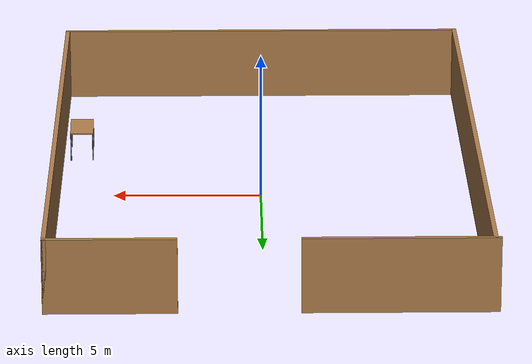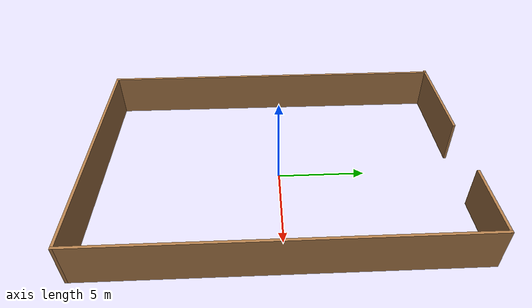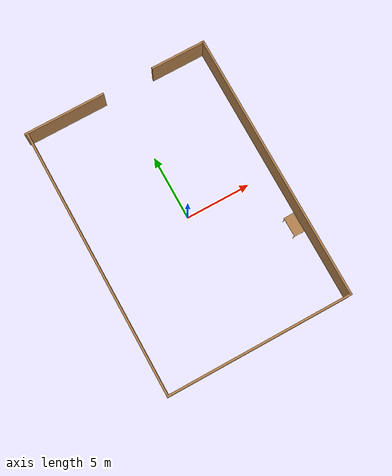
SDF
<sdf version="1.6">
 <world name="default">
  <gravity>0 0 -9.8</gravity>
  <physics name="default_physics" default="0" type="ode">
   <max_step_size>0.001</max_step_size>
   <real_time_factor>1</real_time_factor>
   <real_time_update_rate>1000</real_time_update_rate>
  </physics>
  <light name="Warehouse_CeilingLight_003" type="point">
   <pose>0 0 9 0 -0 0</pose>
   <diffuse>0.5 0.5 0.5 1</diffuse>
   <specular>0.2 0.2 0.2 1</specular>
   <attenuation>
    <range>80</range>
    <constant>0.3</constant>
    <linear>0.01</linear>
    <quadratic>0.001</quadratic>
   </attenuation>
   <direction>0.1 0.1 -1</direction>
  </light>
  <magnetic_field>6e-06 2.3e-05 -4.2e-05</magnetic_field>
  <atmosphere type="adiabatic"/>
  <scene><ambient>0.4 0.4 0.4 1</ambient><background>0.7 0.7 0.7 1</background><shadows>1</shadows></scene>
  <audio><device>default</device></audio>
  <spherical_coordinates>
   <surface_model>EARTH_WGS84</surface_model>
   <latitude_deg>0</latitude_deg>
   <longitude_deg>0</longitude_deg>
   <elevation>0</elevation>
   <heading_deg>0</heading_deg>
  </spherical_coordinates>
  <model name="table">
   <static>1</static>
   <link name="link">
    <collision name="surface">
     <pose>0 0 1 0 -0 0</pose>
     <geometry><box><size>1.5 0.8 0.03</size></box></geometry>
     <surface><friction><ode><mu>0.6</mu><mu2>0.6</mu2></ode></friction></surface>
    </collision>
    <visual name="visual1">
     <pose>0 0 1 0 -0 0</pose>
     <geometry><box><size>1.5 0.8 0.03</size></box></geometry>
     <material>
      <script><uri>file://media/materials/scripts/gazebo.material</uri><name>Gazebo/Wood</name></script>
     </material>
    </visual>
    <collision name="front_left_leg">
     <pose>0.68 0.38 0.5 0 -0 0</pose>
     <geometry><cylinder><radius>0.02</radius><length>1</length></cylinder></geometry>
    </collision>
    <visual name="front_left_leg">
     <pose>0.68 0.38 0.5 0 -0 0</pose>
     <geometry><cylinder><radius>0.02</radius><length>1</length></cylinder></geometry>
     <material>
      <script><uri>file://media/materials/scripts/gazebo.material</uri><name>Gazebo/Grey</name></script>
     </material>
    </visual>
    <collision name="front_right_leg">
     <pose>0.68 -0.38 0.5 0 -0 0</pose>
     <geometry><cylinder><radius>0.02</radius><length>1</length></cylinder></geometry>
    </collision>
    <visual name="front_right_leg">
     <pose>0.68 -0.38 0.5 0 -0 0</pose>
     <geometry><cylinder><radius>0.02</radius><length>1</length></cylinder></geometry>
     <material>
      <script><uri>file://media/materials/scripts/gazebo.material</uri><name>Gazebo/Grey</name></script>
     </material>
    </visual>
    <collision name="back_right_leg">
     <pose>-0.68 -0.38 0.5 0 -0 0</pose>
     <geometry><cylinder><radius>0.02</radius><length>1</length></cylinder></geometry>
    </collision>
    <visual name="back_right_leg">
     <pose>-0.68 -0.38 0.5 0 -0 0</pose>
     <geometry><cylinder><radius>0.02</radius><length>1</length></cylinder></geometry>
     <material>
      <script><uri>file://media/materials/scripts/gazebo.material</uri><name>Gazebo/Grey</name></script>
     </material>
    </visual>
    <collision name="back_left_leg">
     <pose>-0.68 0.38 0.5 0 -0 0</pose>
     <geometry><cylinder><radius>0.02</radius><length>1</length></cylinder></geometry>
    </collision>
    <visual name="back_left_leg">
     <pose>-0.68 0.38 0.5 0 -0 0</pose>
     <geometry><cylinder><radius>0.02</radius><length>1</length></cylinder></geometry>
     <material>
      <script><uri>file://media/materials/scripts/gazebo.material</uri><name>Gazebo/Grey</name></script>
     </material>
    </visual>
   </link>
   <pose>6.2116 -4.1947 0 0 0 -1.55238</pose>
  </model>
  <model name="indus">
   <pose>-0.203108 -0.035331 0 0 -0 0</pose>
   <link name="Wall_10">
    <collision name="Wall_10_Collision">
     <geometry><box><size>20.75 0.15 2.5</size></box></geometry>
     <pose>0 0 1.25 0 -0 0</pose>
    </collision>
    <visual name="Wall_10_Visual">
     <pose>0 0 1.25 0 -0 0</pose>
     <geometry><box><size>20.75 0.15 2.5</size></box></geometry>
     <material>
      <script><uri>file://media/materials/scripts/gazebo.material</uri><name>Gazebo/Wood</name></script>
      <ambient>1 1 1 1</ambient>
     </material>
     <meta><layer>0</layer></meta>
    </visual>
    <pose>-6.98951 -0 0 0 -0 1.5708</pose>
   </link>
   <link name="Wall_4">
    <collision name="Wall_4_Collision">
     <geometry><box><size>6.25 0.15 2.5</size></box></geometry>
     <pose>0 0 1.25 0 -0 0</pose>
    </collision>
    <visual name="Wall_4_Visual">
     <pose>0 0 1.25 0 -0 0</pose>
     <geometry><box><size>6.25 0.15 2.5</size></box></geometry>
     <material>
      <script><uri>file://media/materials/scripts/gazebo.material</uri><name>Gazebo/Wood</name></script>
      <ambient>1 1 1 1</ambient>
     </material>
     <meta><layer>0</layer></meta>
    </visual>
    <pose>-4.0605 10.3 0 0 -0 0</pose>
   </link>
   <link name="Wall_6">
    <collision name="Wall_6_Collision">
     <geometry><box><size>4.25 0.15 2.5</size></box></geometry>
     <pose>0 0 1.25 0 -0 0</pose>
    </collision>
    <visual name="Wall_6_Visual">
     <pose>0 0 1.25 0 -0 0</pose>
     <geometry><box><size>4.25 0.15 2.5</size></box></geometry>
     <material>
      <script><uri>file://media/materials/scripts/gazebo.material</uri><name>Gazebo/Wood</name></script>
      <ambient>1 1 1 1</ambient>
     </material>
     <meta><layer>0</layer></meta>
    </visual>
    <pose>5.0605 10.3 0 0 -0 0</pose>
   </link>
   <link name="Wall_8">
    <collision name="Wall_8_Collision">
     <geometry><box><size>20.75 0.15 2.5</size></box></geometry>
     <pose>0 0 1.25 0 -0 0</pose>
    </collision>
    <visual name="Wall_8_Visual">
     <pose>0 0 1.25 0 -0 0</pose>
     <geometry><box><size>20.75 0.15 2.5</size></box></geometry>
     <material>
      <script><uri>file://media/materials/scripts/gazebo.material</uri><name>Gazebo/Wood</name></script>
      <ambient>1 1 1 1</ambient>
     </material>
     <meta><layer>0</layer></meta>
    </visual>
    <pose>7.1105 -0 0 0 -0 -1.5708</pose>
   </link>
   <link name="Wall_9">
    <collision name="Wall_9_Collision">
     <geometry><box><size>14.25 0.15 2.5</size></box></geometry>
     <pose>0 0 1.25 0 -0 0</pose>
    </collision>
    <visual name="Wall_9_Visual">
     <pose>0 0 1.25 0 -0 0</pose>
     <geometry><box><size>14.25 0.15 2.5</size></box></geometry>
     <material>
      <script><uri>file://media/materials/scripts/gazebo.material</uri><name>Gazebo/Wood</name></script>
      <ambient>1 1 1 1</ambient>
     </material>
     <meta><layer>0</layer></meta>
    </visual>
    <pose>0.060495 -10.3 0 0 -0 3.14159</pose>
   </link>
   <static>1</static>
  </model>
 </world>
</sdf>
